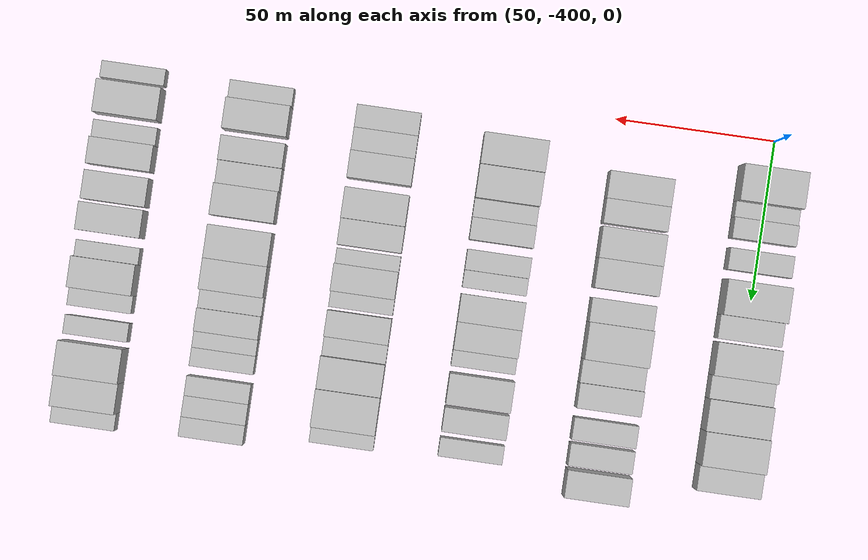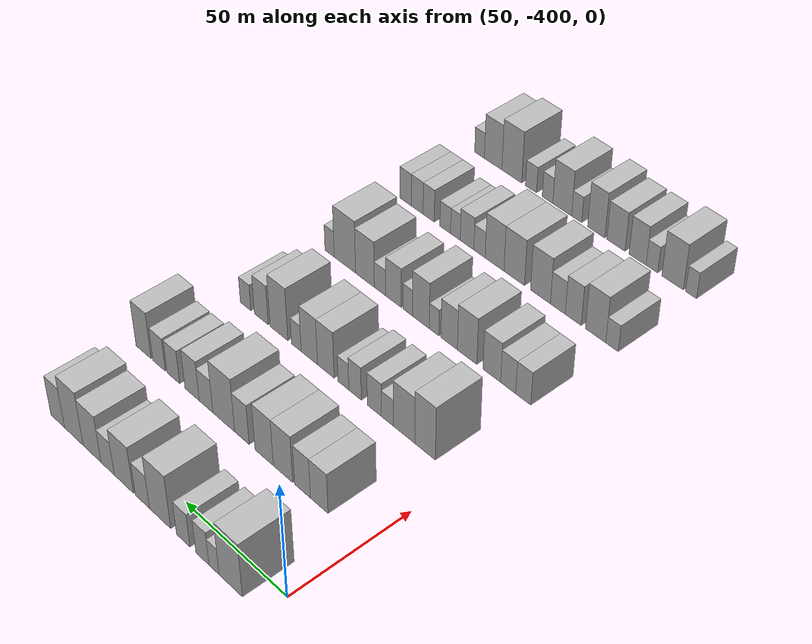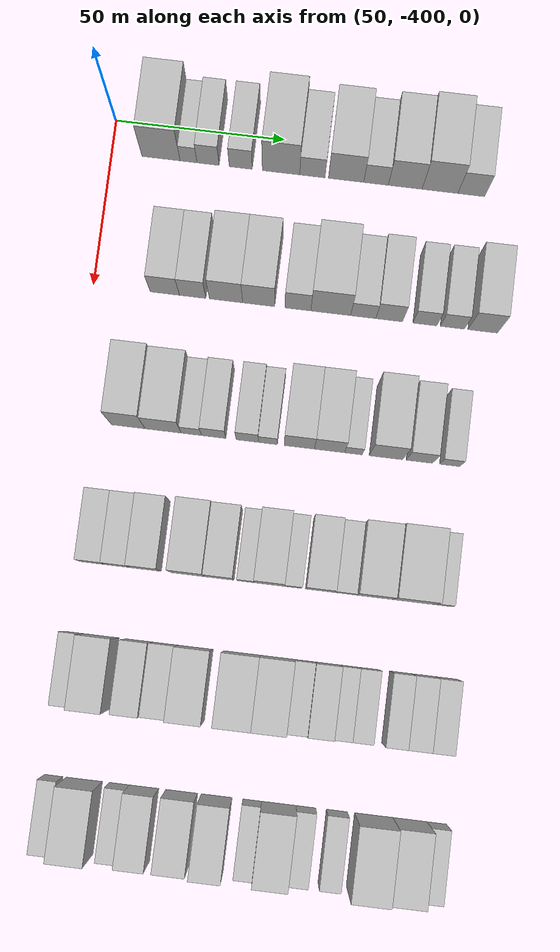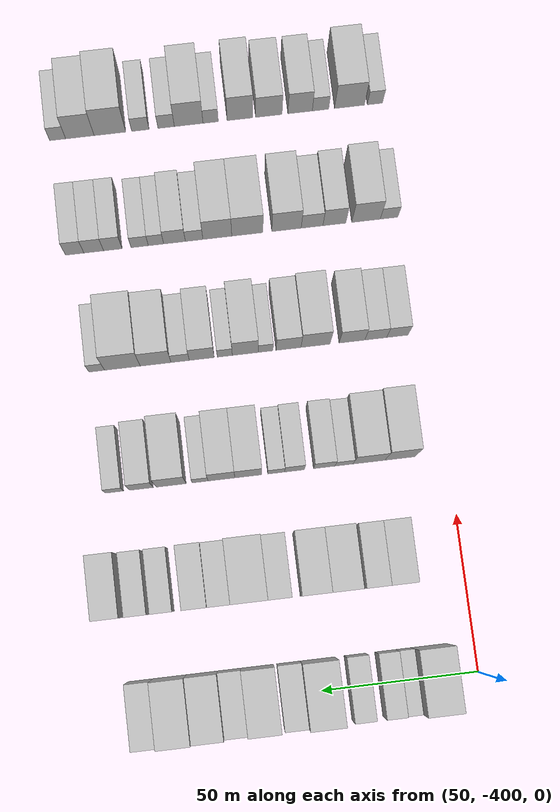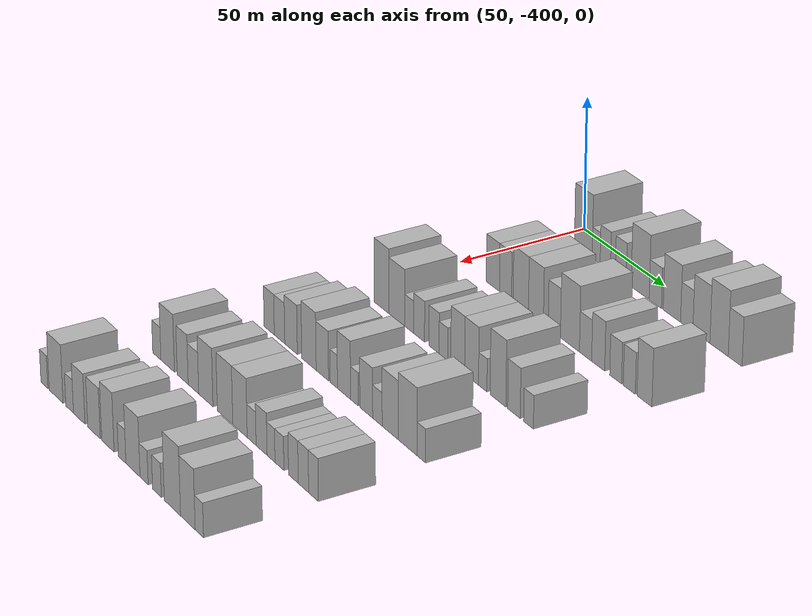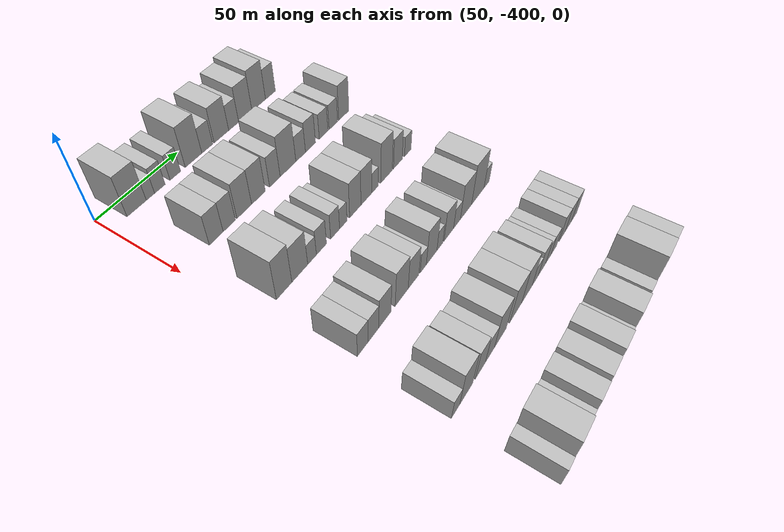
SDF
<sdf version="1.6">
 <world name="default">
  <model name="building_27">
   <static>1</static>
   <pose>50.0000 -385.3663 0 0.000000 0.000000 0.000000</pose>
   <link name="link">
    <pose>0 0 12.00 0 0 0</pose>
    <collision name="collision"><geometry><box><size>20.0000 11.2865 24.0000</size></box></geometry></collision>
    <visual name="visual">
     <cast_shadows>0</cast_shadows>
     <geometry><box><size>20.0000 11.2865 24.0000</size></box></geometry>
     <material>
      <script>
       <uri>model://HANNAS_wall/materials/scripts</uri>
       <uri>model://HANNAS_wall/materials/textures</uri>
       <name>vrc/HANNAS_wall</name>
      </script>
     </material>
    </visual>
   </link>
  </model>
  <model name="building_28">
   <static>1</static>
   <pose>50.0000 -377.2260 0 0.000000 0.000000 0.000000</pose>
   <link name="link">
    <pose>0 0 6.00 0 0 0</pose>
    <collision name="collision"><geometry><box><size>20.0000 4.9940 12.0000</size></box></geometry></collision>
    <visual name="visual">
     <cast_shadows>0</cast_shadows>
     <geometry><box><size>20.0000 4.9940 12.0000</size></box></geometry>
     <material>
      <script>
       <uri>model://HANNAS_wall/materials/scripts</uri>
       <uri>model://HANNAS_wall/materials/textures</uri>
       <name>vrc/HANNAS_wall</name>
      </script>
     </material>
    </visual>
   </link>
  </model>
  <model name="building_29">
   <static>1</static>
   <pose>50.0000 -371.4640 0 0.000000 0.000000 0.000000</pose>
   <link name="link">
    <pose>0 0 7.50 0 0 0</pose>
    <collision name="collision"><geometry><box><size>20.0000 6.5300 15.0000</size></box></geometry></collision>
    <visual name="visual">
     <cast_shadows>0</cast_shadows>
     <geometry><box><size>20.0000 6.5300 15.0000</size></box></geometry>
     <material>
      <script>
       <uri>model://HANNAS_wall/materials/scripts</uri>
       <uri>model://HANNAS_wall/materials/textures</uri>
       <name>vrc/HANNAS_wall</name>
      </script>
     </material>
    </visual>
   </link>
  </model>
  <model name="building_30">
   <static>1</static>
   <pose>50.0000 -361.8052 0 0.000000 0.000000 0.000000</pose>
   <link name="link">
    <pose>0 0 7.50 0 0 0</pose>
    <collision name="collision"><geometry><box><size>20.0000 6.7876 15.0000</size></box></geometry></collision>
    <visual name="visual">
     <cast_shadows>0</cast_shadows>
     <geometry><box><size>20.0000 6.7876 15.0000</size></box></geometry>
     <material>
      <script>
       <uri>model://HANNAS_wall/materials/scripts</uri>
       <uri>model://HANNAS_wall/materials/textures</uri>
       <name>vrc/HANNAS_wall</name>
      </script>
     </material>
    </visual>
   </link>
  </model>
  <model name="building_31">
   <static>1</static>
   <pose>50.0000 -349.9023 0 0.000000 0.000000 0.000000</pose>
   <link name="link">
    <pose>0 0 12.00 0 0 0</pose>
    <collision name="collision"><geometry><box><size>20.0000 11.0183 24.0000</size></box></geometry></collision>
    <visual name="visual">
     <cast_shadows>0</cast_shadows>
     <geometry><box><size>20.0000 11.0183 24.0000</size></box></geometry>
     <material>
      <script>
       <uri>model://HANNAS_wall/materials/scripts</uri>
       <uri>model://HANNAS_wall/materials/textures</uri>
       <name>vrc/HANNAS_wall</name>
      </script>
     </material>
    </visual>
   </link>
  </model>
  <model name="building_32">
   <static>1</static>
   <pose>50.0000 -340.6595 0 0.000000 0.000000 0.000000</pose>
   <link name="link">
    <pose>0 0 7.50 0 0 0</pose>
    <collision name="collision"><geometry><box><size>20.0000 7.4672 15.0000</size></box></geometry></collision>
    <visual name="visual">
     <cast_shadows>0</cast_shadows>
     <geometry><box><size>20.0000 7.4672 15.0000</size></box></geometry>
     <material>
      <script>
       <uri>model://HANNAS_wall/materials/scripts</uri>
       <uri>model://HANNAS_wall/materials/textures</uri>
       <name>vrc/HANNAS_wall</name>
      </script>
     </material>
    </visual>
   </link>
  </model>
  <model name="building_33">
   <static>1</static>
   <pose>50.0000 -330.7466 0 0.000000 0.000000 0.000000</pose>
   <link name="link">
    <pose>0 0 10.50 0 0 0</pose>
    <collision name="collision"><geometry><box><size>20.0000 10.3585 21.0000</size></box></geometry></collision>
    <visual name="visual">
     <cast_shadows>0</cast_shadows>
     <geometry><box><size>20.0000 10.3585 21.0000</size></box></geometry>
     <material>
      <script>
       <uri>model://HANNAS_wall/materials/scripts</uri>
       <uri>model://HANNAS_wall/materials/textures</uri>
       <name>vrc/HANNAS_wall</name>
      </script>
     </material>
    </visual>
   </link>
  </model>
  <model name="building_34">
   <static>1</static>
   <pose>50.0000 -321.9302 0 0.000000 0.000000 0.000000</pose>
   <link name="link">
    <pose>0 0 7.50 0 0 0</pose>
    <collision name="collision"><geometry><box><size>20.0000 7.2742 15.0000</size></box></geometry></collision>
    <visual name="visual">
     <cast_shadows>0</cast_shadows>
     <geometry><box><size>20.0000 7.2742 15.0000</size></box></geometry>
     <material>
      <script>
       <uri>model://HANNAS_wall/materials/scripts</uri>
       <uri>model://HANNAS_wall/materials/textures</uri>
       <name>vrc/HANNAS_wall</name>
      </script>
     </material>
    </visual>
   </link>
  </model>
  <model name="building_35">
   <static>1</static>
   <pose>50.0000 -313.3145 0 0.000000 0.000000 0.000000</pose>
   <link name="link">
    <pose>0 0 10.50 0 0 0</pose>
    <collision name="collision"><geometry><box><size>20.0000 9.9572 21.0000</size></box></geometry></collision>
    <visual name="visual">
     <cast_shadows>0</cast_shadows>
     <geometry><box><size>20.0000 9.9572 21.0000</size></box></geometry>
     <material>
      <script>
       <uri>model://HANNAS_wall/materials/scripts</uri>
       <uri>model://HANNAS_wall/materials/textures</uri>
       <name>vrc/HANNAS_wall</name>
      </script>
     </material>
    </visual>
   </link>
  </model>
  <model name="building_36">
   <static>1</static>
   <pose>50.0000 -303.0526 0 0.000000 0.000000 0.000000</pose>
   <link name="link">
    <pose>0 0 12.00 0 0 0</pose>
    <collision name="collision"><geometry><box><size>20.0000 10.5666 24.0000</size></box></geometry></collision>
    <visual name="visual">
     <cast_shadows>0</cast_shadows>
     <geometry><box><size>20.0000 10.5666 24.0000</size></box></geometry>
     <material>
      <script>
       <uri>model://HANNAS_wall/materials/scripts</uri>
       <uri>model://HANNAS_wall/materials/textures</uri>
       <name>vrc/HANNAS_wall</name>
      </script>
     </material>
    </visual>
   </link>
  </model>
  <model name="building_37">
   <static>1</static>
   <pose>50.0000 -293.8094 0 0.000000 0.000000 0.000000</pose>
   <link name="link">
    <pose>0 0 9.00 0 0 0</pose>
    <collision name="collision"><geometry><box><size>20.0000 7.9198 18.0000</size></box></geometry></collision>
    <visual name="visual">
     <cast_shadows>0</cast_shadows>
     <geometry><box><size>20.0000 7.9198 18.0000</size></box></geometry>
     <material>
      <script>
       <uri>model://HANNAS_wall/materials/scripts</uri>
       <uri>model://HANNAS_wall/materials/textures</uri>
       <name>vrc/HANNAS_wall</name>
      </script>
     </material>
    </visual>
   </link>
  </model>
  <model name="building_160">
   <static>1</static>
   <pose>90.0000 -379.0233 0 0.000000 0.000000 0.000000</pose>
   <link name="link">
    <pose>0 0 9.00 0 0 0</pose>
    <collision name="collision"><geometry><box><size>20.0000 8.5410 18.0000</size></box></geometry></collision>
    <visual name="visual">
     <cast_shadows>0</cast_shadows>
     <geometry><box><size>20.0000 8.5410 18.0000</size></box></geometry>
     <material>
      <script>
       <uri>model://HANNAS_wall/materials/scripts</uri>
       <uri>model://HANNAS_wall/materials/textures</uri>
       <name>vrc/HANNAS_wall</name>
      </script>
     </material>
    </visual>
   </link>
  </model>
  <model name="building_161">
   <static>1</static>
   <pose>90.0000 -370.8769 0 0.000000 0.000000 0.000000</pose>
   <link name="link">
    <pose>0 0 9.00 0 0 0</pose>
    <collision name="collision"><geometry><box><size>20.0000 7.7519 18.0000</size></box></geometry></collision>
    <visual name="visual">
     <cast_shadows>0</cast_shadows>
     <geometry><box><size>20.0000 7.7519 18.0000</size></box></geometry>
     <material>
      <script>
       <uri>model://HANNAS_wall/materials/scripts</uri>
       <uri>model://HANNAS_wall/materials/textures</uri>
       <name>vrc/HANNAS_wall</name>
      </script>
     </material>
    </visual>
   </link>
  </model>
  <model name="building_162">
   <static>1</static>
   <pose>90.0000 -361.1443 0 0.000000 0.000000 0.000000</pose>
   <link name="link">
    <pose>0 0 10.50 0 0 0</pose>
    <collision name="collision"><geometry><box><size>20.0000 9.7133 21.0000</size></box></geometry></collision>
    <visual name="visual">
     <cast_shadows>0</cast_shadows>
     <geometry><box><size>20.0000 9.7133 21.0000</size></box></geometry>
     <material>
      <script>
       <uri>model://HANNAS_wall/materials/scripts</uri>
       <uri>model://HANNAS_wall/materials/textures</uri>
       <name>vrc/HANNAS_wall</name>
      </script>
     </material>
    </visual>
   </link>
  </model>
  <model name="building_163">
   <static>1</static>
   <pose>90.0000 -351.6081 0 0.000000 0.000000 0.000000</pose>
   <link name="link">
    <pose>0 0 10.50 0 0 0</pose>
    <collision name="collision"><geometry><box><size>20.0000 9.3591 21.0000</size></box></geometry></collision>
    <visual name="visual">
     <cast_shadows>0</cast_shadows>
     <geometry><box><size>20.0000 9.3591 21.0000</size></box></geometry>
     <material>
      <script>
       <uri>model://HANNAS_wall/materials/scripts</uri>
       <uri>model://HANNAS_wall/materials/textures</uri>
       <name>vrc/HANNAS_wall</name>
      </script>
     </material>
    </visual>
   </link>
  </model>
  <model name="building_164">
   <static>1</static>
   <pose>90.0000 -340.1516 0 0.000000 0.000000 0.000000</pose>
   <link name="link">
    <pose>0 0 9.00 0 0 0</pose>
    <collision name="collision"><geometry><box><size>20.0000 7.5537 18.0000</size></box></geometry></collision>
    <visual name="visual">
     <cast_shadows>0</cast_shadows>
     <geometry><box><size>20.0000 7.5537 18.0000</size></box></geometry>
     <material>
      <script>
       <uri>model://HANNAS_wall/materials/scripts</uri>
       <uri>model://HANNAS_wall/materials/textures</uri>
       <name>vrc/HANNAS_wall</name>
      </script>
     </material>
    </visual>
   </link>
  </model>
  <model name="building_165">
   <static>1</static>
   <pose>90.0000 -330.5862 0 0.000000 0.000000 0.000000</pose>
   <link name="link">
    <pose>0 0 12.00 0 0 0</pose>
    <collision name="collision"><geometry><box><size>20.0000 11.5771 24.0000</size></box></geometry></collision>
    <visual name="visual">
     <cast_shadows>0</cast_shadows>
     <geometry><box><size>20.0000 11.5771 24.0000</size></box></geometry>
     <material>
      <script>
       <uri>model://HANNAS_wall/materials/scripts</uri>
       <uri>model://HANNAS_wall/materials/textures</uri>
       <name>vrc/HANNAS_wall</name>
      </script>
     </material>
    </visual>
   </link>
  </model>
  <model name="building_166">
   <static>1</static>
   <pose>90.0000 -321.1206 0 0.000000 0.000000 0.000000</pose>
   <link name="link">
    <pose>0 0 7.50 0 0 0</pose>
    <collision name="collision"><geometry><box><size>20.0000 7.3541 15.0000</size></box></geometry></collision>
    <visual name="visual">
     <cast_shadows>0</cast_shadows>
     <geometry><box><size>20.0000 7.3541 15.0000</size></box></geometry>
     <material>
      <script>
       <uri>model://HANNAS_wall/materials/scripts</uri>
       <uri>model://HANNAS_wall/materials/textures</uri>
       <name>vrc/HANNAS_wall</name>
      </script>
     </material>
    </visual>
   </link>
  </model>
  <model name="building_167">
   <static>1</static>
   <pose>90.0000 -313.5373 0 0.000000 0.000000 0.000000</pose>
   <link name="link">
    <pose>0 0 9.00 0 0 0</pose>
    <collision name="collision"><geometry><box><size>20.0000 7.8123 18.0000</size></box></geometry></collision>
    <visual name="visual">
     <cast_shadows>0</cast_shadows>
     <geometry><box><size>20.0000 7.8123 18.0000</size></box></geometry>
     <material>
      <script>
       <uri>model://HANNAS_wall/materials/scripts</uri>
       <uri>model://HANNAS_wall/materials/textures</uri>
       <name>vrc/HANNAS_wall</name>
      </script>
     </material>
    </visual>
   </link>
  </model>
  <model name="building_168">
   <static>1</static>
   <pose>90.0000 -303.1380 0 0.000000 0.000000 0.000000</pose>
   <link name="link">
    <pose>0 0 7.50 0 0 0</pose>
    <collision name="collision"><geometry><box><size>20.0000 6.9864 15.0000</size></box></geometry></collision>
    <visual name="visual">
     <cast_shadows>0</cast_shadows>
     <geometry><box><size>20.0000 6.9864 15.0000</size></box></geometry>
     <material>
      <script>
       <uri>model://HANNAS_wall/materials/scripts</uri>
       <uri>model://HANNAS_wall/materials/textures</uri>
       <name>vrc/HANNAS_wall</name>
      </script>
     </material>
    </visual>
   </link>
  </model>
  <model name="building_169">
   <static>1</static>
   <pose>90.0000 -295.1244 0 0.000000 0.000000 0.000000</pose>
   <link name="link">
    <pose>0 0 7.50 0 0 0</pose>
    <collision name="collision"><geometry><box><size>20.0000 7.0409 15.0000</size></box></geometry></collision>
    <visual name="visual">
     <cast_shadows>0</cast_shadows>
     <geometry><box><size>20.0000 7.0409 15.0000</size></box></geometry>
     <material>
      <script>
       <uri>model://HANNAS_wall/materials/scripts</uri>
       <uri>model://HANNAS_wall/materials/textures</uri>
       <name>vrc/HANNAS_wall</name>
      </script>
     </material>
    </visual>
   </link>
  </model>
  <model name="building_170">
   <static>1</static>
   <pose>90.0000 -286.2869 0 0.000000 0.000000 0.000000</pose>
   <link name="link">
    <pose>0 0 10.50 0 0 0</pose>
    <collision name="collision"><geometry><box><size>20.0000 8.6341 21.0000</size></box></geometry></collision>
    <visual name="visual">
     <cast_shadows>0</cast_shadows>
     <geometry><box><size>20.0000 8.6341 21.0000</size></box></geometry>
     <material>
      <script>
       <uri>model://HANNAS_wall/materials/scripts</uri>
       <uri>model://HANNAS_wall/materials/textures</uri>
       <name>vrc/HANNAS_wall</name>
      </script>
     </material>
    </visual>
   </link>
  </model>
  <model name="building_295">
   <static>1</static>
   <pose>130.0000 -384.3591 0 0.000000 0.000000 0.000000</pose>
   <link name="link">
    <pose>0 0 12.00 0 0 0</pose>
    <collision name="collision"><geometry><box><size>20.0000 9.7721 24.0000</size></box></geometry></collision>
    <visual name="visual">
     <cast_shadows>0</cast_shadows>
     <geometry><box><size>20.0000 9.7721 24.0000</size></box></geometry>
     <material>
      <script>
       <uri>model://HANNAS_wall/materials/scripts</uri>
       <uri>model://HANNAS_wall/materials/textures</uri>
       <name>vrc/HANNAS_wall</name>
      </script>
     </material>
    </visual>
   </link>
  </model>
  <model name="building_296">
   <static>1</static>
   <pose>130.0000 -374.2637 0 0.000000 0.000000 0.000000</pose>
   <link name="link">
    <pose>0 0 10.50 0 0 0</pose>
    <collision name="collision"><geometry><box><size>20.0000 10.4185 21.0000</size></box></geometry></collision>
    <visual name="visual">
     <cast_shadows>0</cast_shadows>
     <geometry><box><size>20.0000 10.4185 21.0000</size></box></geometry>
     <material>
      <script>
       <uri>model://HANNAS_wall/materials/scripts</uri>
       <uri>model://HANNAS_wall/materials/textures</uri>
       <name>vrc/HANNAS_wall</name>
      </script>
     </material>
    </visual>
   </link>
  </model>
  <model name="building_297">
   <static>1</static>
   <pose>130.0000 -366.1147 0 0.000000 0.000000 0.000000</pose>
   <link name="link">
    <pose>0 0 6.00 0 0 0</pose>
    <collision name="collision"><geometry><box><size>20.0000 5.8795 12.0000</size></box></geometry></collision>
    <visual name="visual">
     <cast_shadows>0</cast_shadows>
     <geometry><box><size>20.0000 5.8795 12.0000</size></box></geometry>
     <material>
      <script>
       <uri>model://HANNAS_wall/materials/scripts</uri>
       <uri>model://HANNAS_wall/materials/textures</uri>
       <name>vrc/HANNAS_wall</name>
      </script>
     </material>
    </visual>
   </link>
  </model>
  <model name="building_298">
   <static>1</static>
   <pose>130.0000 -359.6722 0 0.000000 0.000000 0.000000</pose>
   <link name="link">
    <pose>0 0 7.50 0 0 0</pose>
    <collision name="collision"><geometry><box><size>20.0000 7.0057 15.0000</size></box></geometry></collision>
    <visual name="visual">
     <cast_shadows>0</cast_shadows>
     <geometry><box><size>20.0000 7.0057 15.0000</size></box></geometry>
     <material>
      <script>
       <uri>model://HANNAS_wall/materials/scripts</uri>
       <uri>model://HANNAS_wall/materials/textures</uri>
       <name>vrc/HANNAS_wall</name>
      </script>
     </material>
    </visual>
   </link>
  </model>
  <model name="building_299">
   <static>1</static>
   <pose>130.0000 -349.9573 0 0.000000 0.000000 0.000000</pose>
   <link name="link">
    <pose>0 0 7.50 0 0 0</pose>
    <collision name="collision"><geometry><box><size>20.0000 6.4241 15.0000</size></box></geometry></collision>
    <visual name="visual">
     <cast_shadows>0</cast_shadows>
     <geometry><box><size>20.0000 6.4241 15.0000</size></box></geometry>
     <material>
      <script>
       <uri>model://HANNAS_wall/materials/scripts</uri>
       <uri>model://HANNAS_wall/materials/textures</uri>
       <name>vrc/HANNAS_wall</name>
      </script>
     </material>
    </visual>
   </link>
  </model>
  <model name="building_300">
   <static>1</static>
   <pose>130.0000 -344.0239 0 0.000000 0.000000 0.000000</pose>
   <link name="link">
    <pose>0 0 6.00 0 0 0</pose>
    <collision name="collision"><geometry><box><size>20.0000 5.4427 12.0000</size></box></geometry></collision>
    <visual name="visual">
     <cast_shadows>0</cast_shadows>
     <geometry><box><size>20.0000 5.4427 12.0000</size></box></geometry>
     <material>
      <script>
       <uri>model://HANNAS_wall/materials/scripts</uri>
       <uri>model://HANNAS_wall/materials/textures</uri>
       <name>vrc/HANNAS_wall</name>
      </script>
     </material>
    </visual>
   </link>
  </model>
  <model name="building_301">
   <static>1</static>
   <pose>130.0000 -334.9659 0 0.000000 0.000000 0.000000</pose>
   <link name="link">
    <pose>0 0 10.50 0 0 0</pose>
    <collision name="collision"><geometry><box><size>20.0000 8.6734 21.0000</size></box></geometry></collision>
    <visual name="visual">
     <cast_shadows>0</cast_shadows>
     <geometry><box><size>20.0000 8.6734 21.0000</size></box></geometry>
     <material>
      <script>
       <uri>model://HANNAS_wall/materials/scripts</uri>
       <uri>model://HANNAS_wall/materials/textures</uri>
       <name>vrc/HANNAS_wall</name>
      </script>
     </material>
    </visual>
   </link>
  </model>
  <model name="building_302">
   <static>1</static>
   <pose>130.0000 -326.2972 0 0.000000 0.000000 0.000000</pose>
   <link name="link">
    <pose>0 0 10.50 0 0 0</pose>
    <collision name="collision"><geometry><box><size>20.0000 8.6640 21.0000</size></box></geometry></collision>
    <visual name="visual">
     <cast_shadows>0</cast_shadows>
     <geometry><box><size>20.0000 8.6640 21.0000</size></box></geometry>
     <material>
      <script>
       <uri>model://HANNAS_wall/materials/scripts</uri>
       <uri>model://HANNAS_wall/materials/textures</uri>
       <name>vrc/HANNAS_wall</name>
      </script>
     </material>
    </visual>
   </link>
  </model>
  <model name="building_303">
   <static>1</static>
   <pose>130.0000 -319.3971 0 0.000000 0.000000 0.000000</pose>
   <link name="link">
    <pose>0 0 6.00 0 0 0</pose>
    <collision name="collision"><geometry><box><size>20.0000 5.1361 12.0000</size></box></geometry></collision>
    <visual name="visual">
     <cast_shadows>0</cast_shadows>
     <geometry><box><size>20.0000 5.1361 12.0000</size></box></geometry>
     <material>
      <script>
       <uri>model://HANNAS_wall/materials/scripts</uri>
       <uri>model://HANNAS_wall/materials/textures</uri>
       <name>vrc/HANNAS_wall</name>
      </script>
     </material>
    </visual>
   </link>
  </model>
  <model name="building_304">
   <static>1</static>
   <pose>130.0000 -310.0005 0 0.000000 0.000000 0.000000</pose>
   <link name="link">
    <pose>0 0 12.00 0 0 0</pose>
    <collision name="collision"><geometry><box><size>20.0000 9.6571 24.0000</size></box></geometry></collision>
    <visual name="visual">
     <cast_shadows>0</cast_shadows>
     <geometry><box><size>20.0000 9.6571 24.0000</size></box></geometry>
     <material>
      <script>
       <uri>model://HANNAS_wall/materials/scripts</uri>
       <uri>model://HANNAS_wall/materials/textures</uri>
       <name>vrc/HANNAS_wall</name>
      </script>
     </material>
    </visual>
   </link>
  </model>
  <model name="building_305">
   <static>1</static>
   <pose>130.0000 -300.3597 0 0.000000 0.000000 0.000000</pose>
   <link name="link">
    <pose>0 0 9.00 0 0 0</pose>
    <collision name="collision"><geometry><box><size>20.0000 7.6247 18.0000</size></box></geometry></collision>
    <visual name="visual">
     <cast_shadows>0</cast_shadows>
     <geometry><box><size>20.0000 7.6247 18.0000</size></box></geometry>
     <material>
      <script>
       <uri>model://HANNAS_wall/materials/scripts</uri>
       <uri>model://HANNAS_wall/materials/textures</uri>
       <name>vrc/HANNAS_wall</name>
      </script>
     </material>
    </visual>
   </link>
  </model>
  <model name="building_306">
   <static>1</static>
   <pose>130.0000 -291.6224 0 0.000000 0.000000 0.000000</pose>
   <link name="link">
    <pose>0 0 6.00 0 0 0</pose>
    <collision name="collision"><geometry><box><size>20.0000 5.8500 12.0000</size></box></geometry></collision>
    <visual name="visual">
     <cast_shadows>0</cast_shadows>
     <geometry><box><size>20.0000 5.8500 12.0000</size></box></geometry>
     <material>
      <script>
       <uri>model://HANNAS_wall/materials/scripts</uri>
       <uri>model://HANNAS_wall/materials/textures</uri>
       <name>vrc/HANNAS_wall</name>
      </script>
     </material>
    </visual>
   </link>
  </model>
  <model name="building_428">
   <static>1</static>
   <pose>170.0000 -388.8724 0 0.000000 0.000000 0.000000</pose>
   <link name="link">
    <pose>0 0 7.50 0 0 0</pose>
    <collision name="collision"><geometry><box><size>20.0000 7.0955 15.0000</size></box></geometry></collision>
    <visual name="visual">
     <cast_shadows>0</cast_shadows>
     <geometry><box><size>20.0000 7.0955 15.0000</size></box></geometry>
     <material>
      <script>
       <uri>model://HANNAS_wall/materials/scripts</uri>
       <uri>model://HANNAS_wall/materials/textures</uri>
       <name>vrc/HANNAS_wall</name>
      </script>
     </material>
    </visual>
   </link>
  </model>
  <model name="building_429">
   <static>1</static>
   <pose>170.0000 -381.7296 0 0.000000 0.000000 0.000000</pose>
   <link name="link">
    <pose>0 0 7.50 0 0 0</pose>
    <collision name="collision"><geometry><box><size>20.0000 7.1899 15.0000</size></box></geometry></collision>
    <visual name="visual">
     <cast_shadows>0</cast_shadows>
     <geometry><box><size>20.0000 7.1899 15.0000</size></box></geometry>
     <material>
      <script>
       <uri>model://HANNAS_wall/materials/scripts</uri>
       <uri>model://HANNAS_wall/materials/textures</uri>
       <name>vrc/HANNAS_wall</name>
      </script>
     </material>
    </visual>
   </link>
  </model>
  <model name="building_430">
   <static>1</static>
   <pose>170.0000 -373.8866 0 0.000000 0.000000 0.000000</pose>
   <link name="link">
    <pose>0 0 9.00 0 0 0</pose>
    <collision name="collision"><geometry><box><size>20.0000 8.4962 18.0000</size></box></geometry></collision>
    <visual name="visual">
     <cast_shadows>0</cast_shadows>
     <geometry><box><size>20.0000 8.4962 18.0000</size></box></geometry>
     <material>
      <script>
       <uri>model://HANNAS_wall/materials/scripts</uri>
       <uri>model://HANNAS_wall/materials/textures</uri>
       <name>vrc/HANNAS_wall</name>
      </script>
     </material>
    </visual>
   </link>
  </model>
  <model name="building_431">
   <static>1</static>
   <pose>170.0000 -361.8331 0 0.000000 0.000000 0.000000</pose>
   <link name="link">
    <pose>0 0 10.50 0 0 0</pose>
    <collision name="collision"><geometry><box><size>20.0000 9.6107 21.0000</size></box></geometry></collision>
    <visual name="visual">
     <cast_shadows>0</cast_shadows>
     <geometry><box><size>20.0000 9.6107 21.0000</size></box></geometry>
     <material>
      <script>
       <uri>model://HANNAS_wall/materials/scripts</uri>
       <uri>model://HANNAS_wall/materials/textures</uri>
       <name>vrc/HANNAS_wall</name>
      </script>
     </material>
    </visual>
   </link>
  </model>
  <model name="building_432">
   <static>1</static>
   <pose>170.0000 -352.9228 0 0.000000 0.000000 0.000000</pose>
   <link name="link">
    <pose>0 0 9.00 0 0 0</pose>
    <collision name="collision"><geometry><box><size>20.0000 8.2098 18.0000</size></box></geometry></collision>
    <visual name="visual">
     <cast_shadows>0</cast_shadows>
     <geometry><box><size>20.0000 8.2098 18.0000</size></box></geometry>
     <material>
      <script>
       <uri>model://HANNAS_wall/materials/scripts</uri>
       <uri>model://HANNAS_wall/materials/textures</uri>
       <name>vrc/HANNAS_wall</name>
      </script>
     </material>
    </visual>
   </link>
  </model>
  <model name="building_433">
   <static>1</static>
   <pose>170.0000 -345.3945 0 0.000000 0.000000 0.000000</pose>
   <link name="link">
    <pose>0 0 6.00 0 0 0</pose>
    <collision name="collision"><geometry><box><size>20.0000 4.8468 12.0000</size></box></geometry></collision>
    <visual name="visual">
     <cast_shadows>0</cast_shadows>
     <geometry><box><size>20.0000 4.8468 12.0000</size></box></geometry>
     <material>
      <script>
       <uri>model://HANNAS_wall/materials/scripts</uri>
       <uri>model://HANNAS_wall/materials/textures</uri>
       <name>vrc/HANNAS_wall</name>
      </script>
     </material>
    </visual>
   </link>
  </model>
  <model name="building_434">
   <static>1</static>
   <pose>170.0000 -338.6933 0 0.000000 0.000000 0.000000</pose>
   <link name="link">
    <pose>0 0 10.50 0 0 0</pose>
    <collision name="collision"><geometry><box><size>20.0000 8.5556 21.0000</size></box></geometry></collision>
    <visual name="visual">
     <cast_shadows>0</cast_shadows>
     <geometry><box><size>20.0000 8.5556 21.0000</size></box></geometry>
     <material>
      <script>
       <uri>model://HANNAS_wall/materials/scripts</uri>
       <uri>model://HANNAS_wall/materials/textures</uri>
       <name>vrc/HANNAS_wall</name>
      </script>
     </material>
    </visual>
   </link>
  </model>
  <model name="building_435">
   <static>1</static>
   <pose>170.0000 -331.9417 0 0.000000 0.000000 0.000000</pose>
   <link name="link">
    <pose>0 0 6.00 0 0 0</pose>
    <collision name="collision"><geometry><box><size>20.0000 4.9477 12.0000</size></box></geometry></collision>
    <visual name="visual">
     <cast_shadows>0</cast_shadows>
     <geometry><box><size>20.0000 4.9477 12.0000</size></box></geometry>
     <material>
      <script>
       <uri>model://HANNAS_wall/materials/scripts</uri>
       <uri>model://HANNAS_wall/materials/textures</uri>
       <name>vrc/HANNAS_wall</name>
      </script>
     </material>
    </visual>
   </link>
  </model>
  <model name="building_436">
   <static>1</static>
   <pose>170.0000 -324.3651 0 0.000000 0.000000 0.000000</pose>
   <link name="link">
    <pose>0 0 9.00 0 0 0</pose>
    <collision name="collision"><geometry><box><size>20.0000 8.2054 18.0000</size></box></geometry></collision>
    <visual name="visual">
     <cast_shadows>0</cast_shadows>
     <geometry><box><size>20.0000 8.2054 18.0000</size></box></geometry>
     <material>
      <script>
       <uri>model://HANNAS_wall/materials/scripts</uri>
       <uri>model://HANNAS_wall/materials/textures</uri>
       <name>vrc/HANNAS_wall</name>
      </script>
     </material>
    </visual>
   </link>
  </model>
  <model name="building_437">
   <static>1</static>
   <pose>170.0000 -317.2642 0 0.000000 0.000000 0.000000</pose>
   <link name="link">
    <pose>0 0 6.00 0 0 0</pose>
    <collision name="collision"><geometry><box><size>20.0000 5.9964 12.0000</size></box></geometry></collision>
    <visual name="visual">
     <cast_shadows>0</cast_shadows>
     <geometry><box><size>20.0000 5.9964 12.0000</size></box></geometry>
     <material>
      <script>
       <uri>model://HANNAS_wall/materials/scripts</uri>
       <uri>model://HANNAS_wall/materials/textures</uri>
       <name>vrc/HANNAS_wall</name>
      </script>
     </material>
    </visual>
   </link>
  </model>
  <model name="building_438">
   <static>1</static>
   <pose>170.0000 -309.2009 0 0.000000 0.000000 0.000000</pose>
   <link name="link">
    <pose>0 0 10.50 0 0 0</pose>
    <collision name="collision"><geometry><box><size>20.0000 10.1303 21.0000</size></box></geometry></collision>
    <visual name="visual">
     <cast_shadows>0</cast_shadows>
     <geometry><box><size>20.0000 10.1303 21.0000</size></box></geometry>
     <material>
      <script>
       <uri>model://HANNAS_wall/materials/scripts</uri>
       <uri>model://HANNAS_wall/materials/textures</uri>
       <name>vrc/HANNAS_wall</name>
      </script>
     </material>
    </visual>
   </link>
  </model>
  <model name="building_439">
   <static>1</static>
   <pose>170.0000 -298.2777 0 0.000000 0.000000 0.000000</pose>
   <link name="link">
    <pose>0 0 12.00 0 0 0</pose>
    <collision name="collision"><geometry><box><size>20.0000 11.7160 24.0000</size></box></geometry></collision>
    <visual name="visual">
     <cast_shadows>0</cast_shadows>
     <geometry><box><size>20.0000 11.7160 24.0000</size></box></geometry>
     <material>
      <script>
       <uri>model://HANNAS_wall/materials/scripts</uri>
       <uri>model://HANNAS_wall/materials/textures</uri>
       <name>vrc/HANNAS_wall</name>
      </script>
     </material>
    </visual>
   </link>
  </model>
  <model name="building_440">
   <static>1</static>
   <pose>170.0000 -289.8499 0 0.000000 0.000000 0.000000</pose>
   <link name="link">
    <pose>0 0 6.00 0 0 0</pose>
    <collision name="collision"><geometry><box><size>20.0000 5.1396 12.0000</size></box></geometry></collision>
    <visual name="visual">
     <cast_shadows>0</cast_shadows>
     <geometry><box><size>20.0000 5.1396 12.0000</size></box></geometry>
     <material>
      <script>
       <uri>model://HANNAS_wall/materials/scripts</uri>
       <uri>model://HANNAS_wall/materials/textures</uri>
       <name>vrc/HANNAS_wall</name>
      </script>
     </material>
    </visual>
   </link>
  </model>
  <model name="building_568">
   <static>1</static>
   <pose>210.0000 -391.5157 0 0.000000 0.000000 0.000000</pose>
   <link name="link">
    <pose>0 0 6.00 0 0 0</pose>
    <collision name="collision"><geometry><box><size>20.0000 5.8724 12.0000</size></box></geometry></collision>
    <visual name="visual">
     <cast_shadows>0</cast_shadows>
     <geometry><box><size>20.0000 5.8724 12.0000</size></box></geometry>
     <material>
      <script>
       <uri>model://HANNAS_wall/materials/scripts</uri>
       <uri>model://HANNAS_wall/materials/textures</uri>
       <name>vrc/HANNAS_wall</name>
      </script>
     </material>
    </visual>
   </link>
  </model>
  <model name="building_569">
   <static>1</static>
   <pose>210.0000 -383.7842 0 0.000000 0.000000 0.000000</pose>
   <link name="link">
    <pose>0 0 10.50 0 0 0</pose>
    <collision name="collision"><geometry><box><size>20.0000 9.5905 21.0000</size></box></geometry></collision>
    <visual name="visual">
     <cast_shadows>0</cast_shadows>
     <geometry><box><size>20.0000 9.5905 21.0000</size></box></geometry>
     <material>
      <script>
       <uri>model://HANNAS_wall/materials/scripts</uri>
       <uri>model://HANNAS_wall/materials/textures</uri>
       <name>vrc/HANNAS_wall</name>
      </script>
     </material>
    </visual>
   </link>
  </model>
  <model name="building_570">
   <static>1</static>
   <pose>210.0000 -373.1627 0 0.000000 0.000000 0.000000</pose>
   <link name="link">
    <pose>0 0 9.00 0 0 0</pose>
    <collision name="collision"><geometry><box><size>20.0000 7.6527 18.0000</size></box></geometry></collision>
    <visual name="visual">
     <cast_shadows>0</cast_shadows>
     <geometry><box><size>20.0000 7.6527 18.0000</size></box></geometry>
     <material>
      <script>
       <uri>model://HANNAS_wall/materials/scripts</uri>
       <uri>model://HANNAS_wall/materials/textures</uri>
       <name>vrc/HANNAS_wall</name>
      </script>
     </material>
    </visual>
   </link>
  </model>
  <model name="building_571">
   <static>1</static>
   <pose>210.0000 -365.7004 0 0.000000 0.000000 0.000000</pose>
   <link name="link">
    <pose>0 0 7.50 0 0 0</pose>
    <collision name="collision"><geometry><box><size>20.0000 7.2718 15.0000</size></box></geometry></collision>
    <visual name="visual">
     <cast_shadows>0</cast_shadows>
     <geometry><box><size>20.0000 7.2718 15.0000</size></box></geometry>
     <material>
      <script>
       <uri>model://HANNAS_wall/materials/scripts</uri>
       <uri>model://HANNAS_wall/materials/textures</uri>
       <name>vrc/HANNAS_wall</name>
      </script>
     </material>
    </visual>
   </link>
  </model>
  <model name="building_572">
   <static>1</static>
   <pose>210.0000 -357.1541 0 0.000000 0.000000 0.000000</pose>
   <link name="link">
    <pose>0 0 10.50 0 0 0</pose>
    <collision name="collision"><geometry><box><size>20.0000 9.8208 21.0000</size></box></geometry></collision>
    <visual name="visual">
     <cast_shadows>0</cast_shadows>
     <geometry><box><size>20.0000 9.8208 21.0000</size></box></geometry>
     <material>
      <script>
       <uri>model://HANNAS_wall/materials/scripts</uri>
       <uri>model://HANNAS_wall/materials/textures</uri>
       <name>vrc/HANNAS_wall</name>
      </script>
     </material>
    </visual>
   </link>
  </model>
  <model name="building_573">
   <static>1</static>
   <pose>210.0000 -344.0406 0 0.000000 0.000000 0.000000</pose>
   <link name="link">
    <pose>0 0 10.50 0 0 0</pose>
    <collision name="collision"><geometry><box><size>20.0000 10.4062 21.0000</size></box></geometry></collision>
    <visual name="visual">
     <cast_shadows>0</cast_shadows>
     <geometry><box><size>20.0000 10.4062 21.0000</size></box></geometry>
     <material>
      <script>
       <uri>model://HANNAS_wall/materials/scripts</uri>
       <uri>model://HANNAS_wall/materials/textures</uri>
       <name>vrc/HANNAS_wall</name>
      </script>
     </material>
    </visual>
   </link>
  </model>
  <model name="building_574">
   <static>1</static>
   <pose>210.0000 -334.0149 0 0.000000 0.000000 0.000000</pose>
   <link name="link">
    <pose>0 0 10.50 0 0 0</pose>
    <collision name="collision"><geometry><box><size>20.0000 9.6452 21.0000</size></box></geometry></collision>
    <visual name="visual">
     <cast_shadows>0</cast_shadows>
     <geometry><box><size>20.0000 9.6452 21.0000</size></box></geometry>
     <material>
      <script>
       <uri>model://HANNAS_wall/materials/scripts</uri>
       <uri>model://HANNAS_wall/materials/textures</uri>
       <name>vrc/HANNAS_wall</name>
      </script>
     </material>
    </visual>
   </link>
  </model>
  <model name="building_575">
   <static>1</static>
   <pose>210.0000 -326.2717 0 0.000000 0.000000 0.000000</pose>
   <link name="link">
    <pose>0 0 6.00 0 0 0</pose>
    <collision name="collision"><geometry><box><size>20.0000 5.8412 12.0000</size></box></geometry></collision>
    <visual name="visual">
     <cast_shadows>0</cast_shadows>
     <geometry><box><size>20.0000 5.8412 12.0000</size></box></geometry>
     <material>
      <script>
       <uri>model://HANNAS_wall/materials/scripts</uri>
       <uri>model://HANNAS_wall/materials/textures</uri>
       <name>vrc/HANNAS_wall</name>
      </script>
     </material>
    </visual>
   </link>
  </model>
  <model name="building_576">
   <static>1</static>
   <pose>210.0000 -319.7434 0 0.000000 0.000000 0.000000</pose>
   <link name="link">
    <pose>0 0 7.50 0 0 0</pose>
    <collision name="collision"><geometry><box><size>20.0000 7.2156 15.0000</size></box></geometry></collision>
    <visual name="visual">
     <cast_shadows>0</cast_shadows>
     <geometry><box><size>20.0000 7.2156 15.0000</size></box></geometry>
     <material>
      <script>
       <uri>model://HANNAS_wall/materials/scripts</uri>
       <uri>model://HANNAS_wall/materials/textures</uri>
       <name>vrc/HANNAS_wall</name>
      </script>
     </material>
    </visual>
   </link>
  </model>
  <model name="building_577">
   <static>1</static>
   <pose>210.0000 -313.5757 0 0.000000 0.000000 0.000000</pose>
   <link name="link">
    <pose>0 0 6.00 0 0 0</pose>
    <collision name="collision"><geometry><box><size>20.0000 5.1198 12.0000</size></box></geometry></collision>
    <visual name="visual">
     <cast_shadows>0</cast_shadows>
     <geometry><box><size>20.0000 5.1198 12.0000</size></box></geometry>
     <material>
      <script>
       <uri>model://HANNAS_wall/materials/scripts</uri>
       <uri>model://HANNAS_wall/materials/textures</uri>
       <name>vrc/HANNAS_wall</name>
      </script>
     </material>
    </visual>
   </link>
  </model>
  <model name="building_578">
   <static>1</static>
   <pose>210.0000 -308.1347 0 0.000000 0.000000 0.000000</pose>
   <link name="link">
    <pose>0 0 6.00 0 0 0</pose>
    <collision name="collision"><geometry><box><size>20.0000 5.7623 12.0000</size></box></geometry></collision>
    <visual name="visual">
     <cast_shadows>0</cast_shadows>
     <geometry><box><size>20.0000 5.7623 12.0000</size></box></geometry>
     <material>
      <script>
       <uri>model://HANNAS_wall/materials/scripts</uri>
       <uri>model://HANNAS_wall/materials/textures</uri>
       <name>vrc/HANNAS_wall</name>
      </script>
     </material>
    </visual>
   </link>
  </model>
  <model name="building_579">
   <static>1</static>
   <pose>210.0000 -299.1770 0 0.000000 0.000000 0.000000</pose>
   <link name="link">
    <pose>0 0 7.50 0 0 0</pose>
    <collision name="collision"><geometry><box><size>20.0000 6.1530 15.0000</size></box></geometry></collision>
    <visual name="visual">
     <cast_shadows>0</cast_shadows>
     <geometry><box><size>20.0000 6.1530 15.0000</size></box></geometry>
     <material>
      <script>
       <uri>model://HANNAS_wall/materials/scripts</uri>
       <uri>model://HANNAS_wall/materials/textures</uri>
       <name>vrc/HANNAS_wall</name>
      </script>
     </material>
    </visual>
   </link>
  </model>
  <model name="building_580">
   <static>1</static>
   <pose>210.0000 -292.8122 0 0.000000 0.000000 0.000000</pose>
   <link name="link">
    <pose>0 0 7.50 0 0 0</pose>
    <collision name="collision"><geometry><box><size>20.0000 6.5766 15.0000</size></box></geometry></collision>
    <visual name="visual">
     <cast_shadows>0</cast_shadows>
     <geometry><box><size>20.0000 6.5766 15.0000</size></box></geometry>
     <material>
      <script>
       <uri>model://HANNAS_wall/materials/scripts</uri>
       <uri>model://HANNAS_wall/materials/textures</uri>
       <name>vrc/HANNAS_wall</name>
      </script>
     </material>
    </visual>
   </link>
  </model>
  <model name="building_581">
   <static>1</static>
   <pose>210.0000 -286.4598 0 0.000000 0.000000 0.000000</pose>
   <link name="link">
    <pose>0 0 7.50 0 0 0</pose>
    <collision name="collision"><geometry><box><size>20.0000 6.1281 15.0000</size></box></geometry></collision>
    <visual name="visual">
     <cast_shadows>0</cast_shadows>
     <geometry><box><size>20.0000 6.1281 15.0000</size></box></geometry>
     <material>
      <script>
       <uri>model://HANNAS_wall/materials/scripts</uri>
       <uri>model://HANNAS_wall/materials/textures</uri>
       <name>vrc/HANNAS_wall</name>
      </script>
     </material>
    </visual>
   </link>
  </model>
  <model name="building_708">
   <static>1</static>
   <pose>250.0000 -392.0621 0 0.000000 0.000000 0.000000</pose>
   <link name="link">
    <pose>0 0 6.00 0 0 0</pose>
    <collision name="collision"><geometry><box><size>20.0000 5.1672 12.0000</size></box></geometry></collision>
    <visual name="visual">
     <cast_shadows>0</cast_shadows>
     <geometry><box><size>20.0000 5.1672 12.0000</size></box></geometry>
     <material>
      <script>
       <uri>model://HANNAS_wall/materials/scripts</uri>
       <uri>model://HANNAS_wall/materials/textures</uri>
       <name>vrc/HANNAS_wall</name>
      </script>
     </material>
    </visual>
   </link>
  </model>
  <model name="building_709">
   <static>1</static>
   <pose>250.0000 -383.4042 0 0.000000 0.000000 0.000000</pose>
   <link name="link">
    <pose>0 0 10.50 0 0 0</pose>
    <collision name="collision"><geometry><box><size>20.0000 10.1486 21.0000</size></box></geometry></collision>
    <visual name="visual">
     <cast_shadows>0</cast_shadows>
     <geometry><box><size>20.0000 10.1486 21.0000</size></box></geometry>
     <material>
      <script>
       <uri>model://HANNAS_wall/materials/scripts</uri>
       <uri>model://HANNAS_wall/materials/textures</uri>
       <name>vrc/HANNAS_wall</name>
      </script>
     </material>
    </visual>
   </link>
  </model>
  <model name="building_710">
   <static>1</static>
   <pose>250.0000 -373.5418 0 0.000000 0.000000 0.000000</pose>
   <link name="link">
    <pose>0 0 6.00 0 0 0</pose>
    <collision name="collision"><geometry><box><size>20.0000 5.5762 12.0000</size></box></geometry></collision>
    <visual name="visual">
     <cast_shadows>0</cast_shadows>
     <geometry><box><size>20.0000 5.5762 12.0000</size></box></geometry>
     <material>
      <script>
       <uri>model://HANNAS_wall/materials/scripts</uri>
       <uri>model://HANNAS_wall/materials/textures</uri>
       <name>vrc/HANNAS_wall</name>
      </script>
     </material>
    </visual>
   </link>
  </model>
  <model name="building_711">
   <static>1</static>
   <pose>250.0000 -366.6237 0 0.000000 0.000000 0.000000</pose>
   <link name="link">
    <pose>0 0 9.00 0 0 0</pose>
    <collision name="collision"><geometry><box><size>20.0000 8.2599 18.0000</size></box></geometry></collision>
    <visual name="visual">
     <cast_shadows>0</cast_shadows>
     <geometry><box><size>20.0000 8.2599 18.0000</size></box></geometry>
     <material>
      <script>
       <uri>model://HANNAS_wall/materials/scripts</uri>
       <uri>model://HANNAS_wall/materials/textures</uri>
       <name>vrc/HANNAS_wall</name>
      </script>
     </material>
    </visual>
   </link>
  </model>
  <model name="building_712">
   <static>1</static>
   <pose>250.0000 -356.0245 0 0.000000 0.000000 0.000000</pose>
   <link name="link">
    <pose>0 0 9.00 0 0 0</pose>
    <collision name="collision"><geometry><box><size>20.0000 8.9386 18.0000</size></box></geometry></collision>
    <visual name="visual">
     <cast_shadows>0</cast_shadows>
     <geometry><box><size>20.0000 8.9386 18.0000</size></box></geometry>
     <material>
      <script>
       <uri>model://HANNAS_wall/materials/scripts</uri>
       <uri>model://HANNAS_wall/materials/textures</uri>
       <name>vrc/HANNAS_wall</name>
      </script>
     </material>
    </visual>
   </link>
  </model>
  <model name="building_713">
   <static>1</static>
   <pose>250.0000 -346.2201 0 0.000000 0.000000 0.000000</pose>
   <link name="link">
    <pose>0 0 10.50 0 0 0</pose>
    <collision name="collision"><geometry><box><size>20.0000 8.6700 21.0000</size></box></geometry></collision>
    <visual name="visual">
     <cast_shadows>0</cast_shadows>
     <geometry><box><size>20.0000 8.6700 21.0000</size></box></geometry>
     <material>
      <script>
       <uri>model://HANNAS_wall/materials/scripts</uri>
       <uri>model://HANNAS_wall/materials/textures</uri>
       <name>vrc/HANNAS_wall</name>
      </script>
     </material>
    </visual>
   </link>
  </model>
  <model name="building_714">
   <static>1</static>
   <pose>250.0000 -336.2976 0 0.000000 0.000000 0.000000</pose>
   <link name="link">
    <pose>0 0 6.00 0 0 0</pose>
    <collision name="collision"><geometry><box><size>20.0000 5.1750 12.0000</size></box></geometry></collision>
    <visual name="visual">
     <cast_shadows>0</cast_shadows>
     <geometry><box><size>20.0000 5.1750 12.0000</size></box></geometry>
     <material>
      <script>
       <uri>model://HANNAS_wall/materials/scripts</uri>
       <uri>model://HANNAS_wall/materials/textures</uri>
       <name>vrc/HANNAS_wall</name>
      </script>
     </material>
    </visual>
   </link>
  </model>
  <model name="building_715">
   <static>1</static>
   <pose>250.0000 -328.8667 0 0.000000 0.000000 0.000000</pose>
   <link name="link">
    <pose>0 0 10.50 0 0 0</pose>
    <collision name="collision"><geometry><box><size>20.0000 9.6867 21.0000</size></box></geometry></collision>
    <visual name="visual">
     <cast_shadows>0</cast_shadows>
     <geometry><box><size>20.0000 9.6867 21.0000</size></box></geometry>
     <material>
      <script>
       <uri>model://HANNAS_wall/materials/scripts</uri>
       <uri>model://HANNAS_wall/materials/textures</uri>
       <name>vrc/HANNAS_wall</name>
      </script>
     </material>
    </visual>
   </link>
  </model>
  <model name="building_716">
   <static>1</static>
   <pose>250.0000 -321.2474 0 0.000000 0.000000 0.000000</pose>
   <link name="link">
    <pose>0 0 6.00 0 0 0</pose>
    <collision name="collision"><geometry><box><size>20.0000 5.5521 12.0000</size></box></geometry></collision>
    <visual name="visual">
     <cast_shadows>0</cast_shadows>
     <geometry><box><size>20.0000 5.5521 12.0000</size></box></geometry>
     <material>
      <script>
       <uri>model://HANNAS_wall/materials/scripts</uri>
       <uri>model://HANNAS_wall/materials/textures</uri>
       <name>vrc/HANNAS_wall</name>
      </script>
     </material>
    </visual>
   </link>
  </model>
  <model name="building_717">
   <static>1</static>
   <pose>250.0000 -312.5319 0 0.000000 0.000000 0.000000</pose>
   <link name="link">
    <pose>0 0 6.00 0 0 0</pose>
    <collision name="collision"><geometry><box><size>20.0000 5.8789 12.0000</size></box></geometry></collision>
    <visual name="visual">
     <cast_shadows>0</cast_shadows>
     <geometry><box><size>20.0000 5.8789 12.0000</size></box></geometry>
     <material>
      <script>
       <uri>model://HANNAS_wall/materials/scripts</uri>
       <uri>model://HANNAS_wall/materials/textures</uri>
       <name>vrc/HANNAS_wall</name>
      </script>
     </material>
    </visual>
   </link>
  </model>
  <model name="building_718">
   <static>1</static>
   <pose>250.0000 -302.2360 0 0.000000 0.000000 0.000000</pose>
   <link name="link">
    <pose>0 0 12.00 0 0 0</pose>
    <collision name="collision"><geometry><box><size>20.0000 10.7128 24.0000</size></box></geometry></collision>
    <visual name="visual">
     <cast_shadows>0</cast_shadows>
     <geometry><box><size>20.0000 10.7128 24.0000</size></box></geometry>
     <material>
      <script>
       <uri>model://HANNAS_wall/materials/scripts</uri>
       <uri>model://HANNAS_wall/materials/textures</uri>
       <name>vrc/HANNAS_wall</name>
      </script>
     </material>
    </visual>
   </link>
  </model>
  <model name="building_719">
   <static>1</static>
   <pose>250.0000 -292.0928 0 0.000000 0.000000 0.000000</pose>
   <link name="link">
    <pose>0 0 10.50 0 0 0</pose>
    <collision name="collision"><geometry><box><size>20.0000 9.5737 21.0000</size></box></geometry></collision>
    <visual name="visual">
     <cast_shadows>0</cast_shadows>
     <geometry><box><size>20.0000 9.5737 21.0000</size></box></geometry>
     <material>
      <script>
       <uri>model://HANNAS_wall/materials/scripts</uri>
       <uri>model://HANNAS_wall/materials/textures</uri>
       <name>vrc/HANNAS_wall</name>
      </script>
     </material>
    </visual>
   </link>
  </model>
  <model name="building_720">
   <static>1</static>
   <pose>250.0000 -284.6108 0 0.000000 0.000000 0.000000</pose>
   <link name="link">
    <pose>0 0 6.00 0 0 0</pose>
    <collision name="collision"><geometry><box><size>20.0000 5.3902 12.0000</size></box></geometry></collision>
    <visual name="visual">
     <cast_shadows>0</cast_shadows>
     <geometry><box><size>20.0000 5.3902 12.0000</size></box></geometry>
     <material>
      <script>
       <uri>model://HANNAS_wall/materials/scripts</uri>
       <uri>model://HANNAS_wall/materials/textures</uri>
       <name>vrc/HANNAS_wall</name>
      </script>
     </material>
    </visual>
   </link>
  </model>
 </world>
</sdf>
